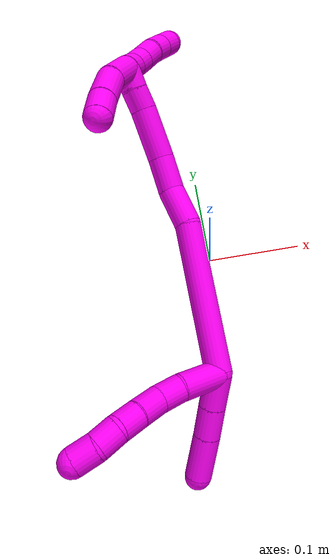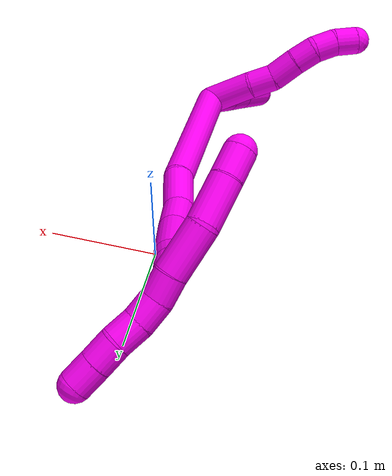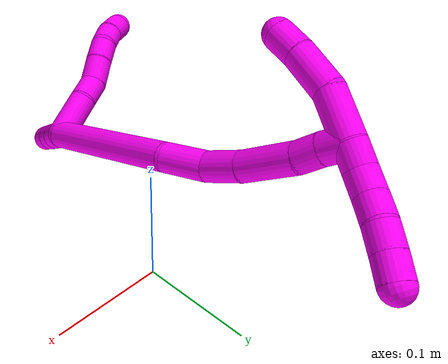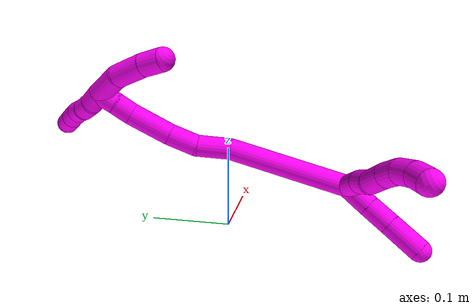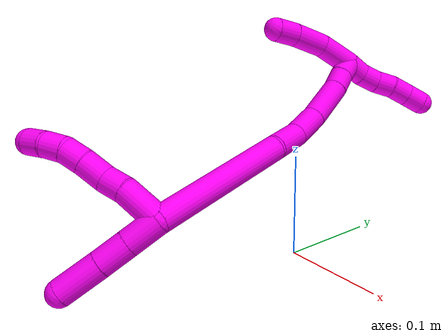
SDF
<sdf version="1.7">
 <world name="default">
  <model name="10">
   <static>0</static>
   <link name="10">
    <collision name="collision-cylinder-e_1_2_8">
     <pose>-0.011674 0.00832 0.015096 -0.503718 -0.595303 0.157549</pose>
     <geometry><cylinder><radius>0.0125</radius><length>0.041635</length></cylinder></geometry>
     <surface>
      <friction><ode><mu>1.16</mu><mu2>1.16</mu2><slip1>0</slip1><slip2>0</slip2></ode></friction>
      <contact><ode><kp>1e+06</kp><kd>1</kd><max_vel>0</max_vel><min_depth>0.001</min_depth></ode></contact>
     </surface>
    </collision>
    <visual name="visual-cylinder-e_1_2_8">
     <pose>-0.011674 0.00832 0.015096 -0.503718 -0.595303 0.157549</pose>
     <geometry><cylinder><radius>0.0125</radius><length>0.041635</length></cylinder></geometry>
     <material><ambient>1 0 0.964706 1</ambient></material>
    </visual>
    <collision name="collision-cylinder-e_2_8_9">
     <pose>-0.030625 0.019375 0.038317 -0.324729 -0.703836 0.120156</pose>
     <geometry><cylinder><radius>0.0125</radius><length>0.022492</length></cylinder></geometry>
     <surface>
      <friction><ode><mu>1.16</mu><mu2>1.16</mu2><slip1>0</slip1><slip2>0</slip2></ode></friction>
      <contact><ode><kp>1e+06</kp><kd>1</kd><max_vel>0</max_vel><min_depth>0.001</min_depth></ode></contact>
     </surface>
    </collision>
    <visual name="visual-cylinder-e_2_8_9">
     <pose>-0.030625 0.019375 0.038317 -0.324729 -0.703836 0.120156</pose>
     <geometry><cylinder><radius>0.0125</radius><length>0.022492</length></cylinder></geometry>
     <material><ambient>1 0 0.964706 1</ambient></material>
    </visual>
    <collision name="collision-cylinder-e_3_9_10">
     <pose>-0.04255 0.025671 0.057563 -0.309844 -0.378736 0.059848</pose>
     <geometry><cylinder><radius>0.0125</radius><length>0.025136</length></cylinder></geometry>
     <surface>
      <friction><ode><mu>1.16</mu><mu2>1.16</mu2><slip1>0</slip1><slip2>0</slip2></ode></friction>
      <contact><ode><kp>1e+06</kp><kd>1</kd><max_vel>0</max_vel><min_depth>0.001</min_depth></ode></contact>
     </surface>
    </collision>
    <visual name="visual-cylinder-e_3_9_10">
     <pose>-0.04255 0.025671 0.057563 -0.309844 -0.378736 0.059848</pose>
     <geometry><cylinder><radius>0.0125</radius><length>0.025136</length></cylinder></geometry>
     <material><ambient>1 0 0.964706 1</ambient></material>
    </visual>
    <collision name="collision-cylinder-e_4_10_11">
     <pose>-0.051834 0.031534 0.07757 -0.253597 -0.467847 0.060736</pose>
     <geometry><cylinder><radius>0.0125</radius><length>0.020567</length></cylinder></geometry>
     <surface>
      <friction><ode><mu>1.16</mu><mu2>1.16</mu2><slip1>0</slip1><slip2>0</slip2></ode></friction>
      <contact><ode><kp>1e+06</kp><kd>1</kd><max_vel>0</max_vel><min_depth>0.001</min_depth></ode></contact>
     </surface>
    </collision>
    <visual name="visual-cylinder-e_4_10_11">
     <pose>-0.051834 0.031534 0.07757 -0.253597 -0.467847 0.060736</pose>
     <geometry><cylinder><radius>0.0125</radius><length>0.020567</length></cylinder></geometry>
     <material><ambient>1 0 0.964706 1</ambient></material>
    </visual>
    <collision name="collision-cylinder-e_5_11_12">
     <pose>-0.063077 0.033957 0.093993 -0.015905 -0.719395 0.005981</pose>
     <geometry><cylinder><radius>0.0125</radius><length>0.020046</length></cylinder></geometry>
     <surface>
      <friction><ode><mu>1.16</mu><mu2>1.16</mu2><slip1>0</slip1><slip2>0</slip2></ode></friction>
      <contact><ode><kp>1e+06</kp><kd>1</kd><max_vel>0</max_vel><min_depth>0.001</min_depth></ode></contact>
     </surface>
    </collision>
    <visual name="visual-cylinder-e_5_11_12">
     <pose>-0.063077 0.033957 0.093993 -0.015905 -0.719395 0.005981</pose>
     <geometry><cylinder><radius>0.0125</radius><length>0.020046</length></cylinder></geometry>
     <material><ambient>1 0 0.964706 1</ambient></material>
    </visual>
    <collision name="collision-cylinder-e_6_12_6">
     <pose>-0.077943 0.034379 0.107266 -0.052614 -0.963405 0.02751</pose>
     <geometry><cylinder><radius>0.0125</radius><length>0.020123</length></cylinder></geometry>
     <surface>
      <friction><ode><mu>1.16</mu><mu2>1.16</mu2><slip1>0</slip1><slip2>0</slip2></ode></friction>
      <contact><ode><kp>1e+06</kp><kd>1</kd><max_vel>0</max_vel><min_depth>0.001</min_depth></ode></contact>
     </surface>
    </collision>
    <visual name="visual-cylinder-e_6_12_6">
     <pose>-0.077943 0.034379 0.107266 -0.052614 -0.963405 0.02751</pose>
     <geometry><cylinder><radius>0.0125</radius><length>0.020123</length></cylinder></geometry>
     <material><ambient>1 0 0.964706 1</ambient></material>
    </visual>
    <collision name="collision-cylinder-e_1_2_13">
     <pose>-0.008409 -0.012279 0.005306 1.16292 -0.561213 -0.37442</pose>
     <geometry><cylinder><radius>0.0125</radius><length>0.031599</length></cylinder></geometry>
     <surface>
      <friction><ode><mu>1.16</mu><mu2>1.16</mu2><slip1>0</slip1><slip2>0</slip2></ode></friction>
      <contact><ode><kp>1e+06</kp><kd>1</kd><max_vel>0</max_vel><min_depth>0.001</min_depth></ode></contact>
     </surface>
    </collision>
    <visual name="visual-cylinder-e_1_2_13">
     <pose>-0.008409 -0.012279 0.005306 1.16292 -0.561213 -0.37442</pose>
     <geometry><cylinder><radius>0.0125</radius><length>0.031599</length></cylinder></geometry>
     <material><ambient>1 0 0.964706 1</ambient></material>
    </visual>
    <collision name="collision-cylinder-e_2_13_14">
     <pose>-0.024109 -0.03566 0.015458 1.15924 -0.541807 -0.359692</pose>
     <geometry><cylinder><radius>0.0125</radius><length>0.028278</length></cylinder></geometry>
     <surface>
      <friction><ode><mu>1.16</mu><mu2>1.16</mu2><slip1>0</slip1><slip2>0</slip2></ode></friction>
      <contact><ode><kp>1e+06</kp><kd>1</kd><max_vel>0</max_vel><min_depth>0.001</min_depth></ode></contact>
     </surface>
    </collision>
    <visual name="visual-cylinder-e_2_13_14">
     <pose>-0.024109 -0.03566 0.015458 1.15924 -0.541807 -0.359692</pose>
     <geometry><cylinder><radius>0.0125</radius><length>0.028278</length></cylinder></geometry>
     <material><ambient>1 0 0.964706 1</ambient></material>
    </visual>
    <collision name="collision-cylinder-e_3_14_5">
     <pose>-0.0422 -0.062142 0.027325 1.14252 -0.568471 -0.371229</pose>
     <geometry><cylinder><radius>0.0125</radius><length>0.040123</length></cylinder></geometry>
     <surface>
      <friction><ode><mu>1.16</mu><mu2>1.16</mu2><slip1>0</slip1><slip2>0</slip2></ode></friction>
      <contact><ode><kp>1e+06</kp><kd>1</kd><max_vel>0</max_vel><min_depth>0.001</min_depth></ode></contact>
     </surface>
    </collision>
    <visual name="visual-cylinder-e_3_14_5">
     <pose>-0.0422 -0.062142 0.027325 1.14252 -0.568471 -0.371229</pose>
     <geometry><cylinder><radius>0.0125</radius><length>0.040123</length></cylinder></geometry>
     <material><ambient>1 0 0.964706 1</ambient></material>
    </visual>
    <collision name="collision-cylinder-e_1_2_15">
     <pose>0.00542 0.058479 -0.037365 -2.13936 0.077939 -0.142121</pose>
     <geometry><cylinder><radius>0.0125</radius><length>0.139216</length></cylinder></geometry>
     <surface>
      <friction><ode><mu>1.16</mu><mu2>1.16</mu2><slip1>0</slip1><slip2>0</slip2></ode></friction>
      <contact><ode><kp>1e+06</kp><kd>1</kd><max_vel>0</max_vel><min_depth>0.001</min_depth></ode></contact>
     </surface>
    </collision>
    <visual name="visual-cylinder-e_1_2_15">
     <pose>0.00542 0.058479 -0.037365 -2.13936 0.077939 -0.142121</pose>
     <geometry><cylinder><radius>0.0125</radius><length>0.139216</length></cylinder></geometry>
     <material><ambient>1 0 0.964706 1</ambient></material>
    </visual>
    <collision name="collision-cylinder-e_2_15_16">
     <pose>0.0071 0.132475 -0.085347 -2.17088 -0.196338 0.369196</pose>
     <geometry><cylinder><radius>0.0125</radius><length>0.03834</length></cylinder></geometry>
     <surface>
      <friction><ode><mu>1.16</mu><mu2>1.16</mu2><slip1>0</slip1><slip2>0</slip2></ode></friction>
      <contact><ode><kp>1e+06</kp><kd>1</kd><max_vel>0</max_vel><min_depth>0.001</min_depth></ode></contact>
     </surface>
    </collision>
    <visual name="visual-cylinder-e_2_15_16">
     <pose>0.0071 0.132475 -0.085347 -2.17088 -0.196338 0.369196</pose>
     <geometry><cylinder><radius>0.0125</radius><length>0.03834</length></cylinder></geometry>
     <material><ambient>1 0 0.964706 1</ambient></material>
    </visual>
    <collision name="collision-cylinder-e_3_16_17">
     <pose>0.003897 0.163256 -0.102456 -1.97287 0.032366 -0.048929</pose>
     <geometry><cylinder><radius>0.0125</radius><length>0.033192</length></cylinder></geometry>
     <surface>
      <friction><ode><mu>1.16</mu><mu2>1.16</mu2><slip1>0</slip1><slip2>0</slip2></ode></friction>
      <contact><ode><kp>1e+06</kp><kd>1</kd><max_vel>0</max_vel><min_depth>0.001</min_depth></ode></contact>
     </surface>
    </collision>
    <visual name="visual-cylinder-e_3_16_17">
     <pose>0.003897 0.163256 -0.102456 -1.97287 0.032366 -0.048929</pose>
     <geometry><cylinder><radius>0.0125</radius><length>0.033192</length></cylinder></geometry>
     <material><ambient>1 0 0.964706 1</ambient></material>
    </visual>
    <collision name="collision-cylinder-e_4_17_18">
     <pose>0.005446 0.201919 -0.115539 -1.8454 0.04158 -0.054907</pose>
     <geometry><cylinder><radius>0.0125</radius><length>0.048662</length></cylinder></geometry>
     <surface>
      <friction><ode><mu>1.16</mu><mu2>1.16</mu2><slip1>0</slip1><slip2>0</slip2></ode></friction>
      <contact><ode><kp>1e+06</kp><kd>1</kd><max_vel>0</max_vel><min_depth>0.001</min_depth></ode></contact>
     </surface>
    </collision>
    <visual name="visual-cylinder-e_4_17_18">
     <pose>0.005446 0.201919 -0.115539 -1.8454 0.04158 -0.054907</pose>
     <geometry><cylinder><radius>0.0125</radius><length>0.048662</length></cylinder></geometry>
     <material><ambient>1 0 0.964706 1</ambient></material>
    </visual>
    <collision name="collision-cylinder-e_5_18_19">
     <pose>0.00669 0.235512 -0.123318 -1.68681 0.0227 -0.025499</pose>
     <geometry><cylinder><radius>0.0125</radius><length>0.020531</length></cylinder></geometry>
     <surface>
      <friction><ode><mu>1.16</mu><mu2>1.16</mu2><slip1>0</slip1><slip2>0</slip2></ode></friction>
      <contact><ode><kp>1e+06</kp><kd>1</kd><max_vel>0</max_vel><min_depth>0.001</min_depth></ode></contact>
     </surface>
    </collision>
    <visual name="visual-cylinder-e_5_18_19">
     <pose>0.00669 0.235512 -0.123318 -1.68681 0.0227 -0.025499</pose>
     <geometry><cylinder><radius>0.0125</radius><length>0.020531</length></cylinder></geometry>
     <material><ambient>1 0 0.964706 1</ambient></material>
    </visual>
    <collision name="collision-cylinder-e_6_19_1">
     <pose>0.007462 0.255513 -0.12654 -1.77526 0.053718 -0.065992</pose>
     <geometry><cylinder><radius>0.0125</radius><length>0.020059</length></cylinder></geometry>
     <surface>
      <friction><ode><mu>1.16</mu><mu2>1.16</mu2><slip1>0</slip1><slip2>0</slip2></ode></friction>
      <contact><ode><kp>1e+06</kp><kd>1</kd><max_vel>0</max_vel><min_depth>0.001</min_depth></ode></contact>
     </surface>
    </collision>
    <visual name="visual-cylinder-e_6_19_1">
     <pose>0.007462 0.255513 -0.12654 -1.77526 0.053718 -0.065992</pose>
     <geometry><cylinder><radius>0.0125</radius><length>0.020059</length></cylinder></geometry>
     <material><ambient>1 0 0.964706 1</ambient></material>
    </visual>
    <collision name="collision-cylinder-e_1_1_20">
     <pose>0.007819 0.265038 -0.138568 3.1135 -0.018132 -1.14626</pose>
     <geometry><cylinder><radius>0.0125</radius><length>0.02</length></cylinder></geometry>
     <surface>
      <friction><ode><mu>1.16</mu><mu2>1.16</mu2><slip1>0</slip1><slip2>0</slip2></ode></friction>
      <contact><ode><kp>1e+06</kp><kd>1</kd><max_vel>0</max_vel><min_depth>0.001</min_depth></ode></contact>
     </surface>
    </collision>
    <visual name="visual-cylinder-e_1_1_20">
     <pose>0.007819 0.265038 -0.138568 3.1135 -0.018132 -1.14626</pose>
     <geometry><cylinder><radius>0.0125</radius><length>0.02</length></cylinder></geometry>
     <material><ambient>1 0 0.964706 1</ambient></material>
    </visual>
    <collision name="collision-cylinder-e_2_20_21">
     <pose>0.009592 0.26547 -0.158343 -3.06885 0.19675 -2.43515</pose>
     <geometry><cylinder><radius>0.0125</radius><length>0.02</length></cylinder></geometry>
     <surface>
      <friction><ode><mu>1.16</mu><mu2>1.16</mu2><slip1>0</slip1><slip2>0</slip2></ode></friction>
      <contact><ode><kp>1e+06</kp><kd>1</kd><max_vel>0</max_vel><min_depth>0.001</min_depth></ode></contact>
     </surface>
    </collision>
    <visual name="visual-cylinder-e_2_20_21">
     <pose>0.009592 0.26547 -0.158343 -3.06885 0.19675 -2.43515</pose>
     <geometry><cylinder><radius>0.0125</radius><length>0.02</length></cylinder></geometry>
     <material><ambient>1 0 0.964706 1</ambient></material>
    </visual>
    <collision name="collision-cylinder-e_3_21_22">
     <pose>0.015293 0.267478 -0.177305 -3.00143 0.384001 -2.44854</pose>
     <geometry><cylinder><radius>0.0125</radius><length>0.02</length></cylinder></geometry>
     <surface>
      <friction><ode><mu>1.16</mu><mu2>1.16</mu2><slip1>0</slip1><slip2>0</slip2></ode></friction>
      <contact><ode><kp>1e+06</kp><kd>1</kd><max_vel>0</max_vel><min_depth>0.001</min_depth></ode></contact>
     </surface>
    </collision>
    <visual name="visual-cylinder-e_3_21_22">
     <pose>0.015293 0.267478 -0.177305 -3.00143 0.384001 -2.44854</pose>
     <geometry><cylinder><radius>0.0125</radius><length>0.02</length></cylinder></geometry>
     <material><ambient>1 0 0.964706 1</ambient></material>
    </visual>
    <collision name="collision-cylinder-e_4_22_23">
     <pose>0.021421 0.268735 -0.196198 3.1376 0.240417 3.10857</pose>
     <geometry><cylinder><radius>0.0125</radius><length>0.02</length></cylinder></geometry>
     <surface>
      <friction><ode><mu>1.16</mu><mu2>1.16</mu2><slip1>0</slip1><slip2>0</slip2></ode></friction>
      <contact><ode><kp>1e+06</kp><kd>1</kd><max_vel>0</max_vel><min_depth>0.001</min_depth></ode></contact>
     </surface>
    </collision>
    <visual name="visual-cylinder-e_4_22_23">
     <pose>0.021421 0.268735 -0.196198 3.1376 0.240417 3.10857</pose>
     <geometry><cylinder><radius>0.0125</radius><length>0.02</length></cylinder></geometry>
     <material><ambient>1 0 0.964706 1</ambient></material>
    </visual>
    <collision name="collision-cylinder-e_5_23_4">
     <pose>0.026359 0.268421 -0.215574 3.11313 0.25863 2.92355</pose>
     <geometry><cylinder><radius>0.0125</radius><length>0.02</length></cylinder></geometry>
     <surface>
      <friction><ode><mu>1.16</mu><mu2>1.16</mu2><slip1>0</slip1><slip2>0</slip2></ode></friction>
      <contact><ode><kp>1e+06</kp><kd>1</kd><max_vel>0</max_vel><min_depth>0.001</min_depth></ode></contact>
     </surface>
    </collision>
    <visual name="visual-cylinder-e_5_23_4">
     <pose>0.026359 0.268421 -0.215574 3.11313 0.25863 2.92355</pose>
     <geometry><cylinder><radius>0.0125</radius><length>0.02</length></cylinder></geometry>
     <material><ambient>1 0 0.964706 1</ambient></material>
    </visual>
    <collision name="collision-cylinder-e_1_1_24">
     <pose>0.006404 0.264663 -0.108985 0.033476 -0.081278 -0.001361</pose>
     <geometry><cylinder><radius>0.0125</radius><length>0.039328</length></cylinder></geometry>
     <surface>
      <friction><ode><mu>1.16</mu><mu2>1.16</mu2><slip1>0</slip1><slip2>0</slip2></ode></friction>
      <contact><ode><kp>1e+06</kp><kd>1</kd><max_vel>0</max_vel><min_depth>0.001</min_depth></ode></contact>
     </surface>
    </collision>
    <visual name="visual-cylinder-e_1_1_24">
     <pose>0.006404 0.264663 -0.108985 0.033476 -0.081278 -0.001361</pose>
     <geometry><cylinder><radius>0.0125</radius><length>0.039328</length></cylinder></geometry>
     <material><ambient>1 0 0.964706 1</ambient></material>
    </visual>
    <collision name="collision-cylinder-e_2_24_25">
     <pose>0.004311 0.258413 -0.071868 0.308915 -0.026972 -0.0042</pose>
     <geometry><cylinder><radius>0.0125</radius><length>0.036815</length></cylinder></geometry>
     <surface>
      <friction><ode><mu>1.16</mu><mu2>1.16</mu2><slip1>0</slip1><slip2>0</slip2></ode></friction>
      <contact><ode><kp>1e+06</kp><kd>1</kd><max_vel>0</max_vel><min_depth>0.001</min_depth></ode></contact>
     </surface>
    </collision>
    <visual name="visual-cylinder-e_2_24_25">
     <pose>0.004311 0.258413 -0.071868 0.308915 -0.026972 -0.0042</pose>
     <geometry><cylinder><radius>0.0125</radius><length>0.036815</length></cylinder></geometry>
     <material><ambient>1 0 0.964706 1</ambient></material>
    </visual>
    <collision name="collision-cylinder-e_3_25_3">
     <pose>0.003338 0.248009 -0.043432 0.415353 -0.039957 -0.008421</pose>
     <geometry><cylinder><radius>0.0125</radius><length>0.023858</length></cylinder></geometry>
     <surface>
      <friction><ode><mu>1.16</mu><mu2>1.16</mu2><slip1>0</slip1><slip2>0</slip2></ode></friction>
      <contact><ode><kp>1e+06</kp><kd>1</kd><max_vel>0</max_vel><min_depth>0.001</min_depth></ode></contact>
     </surface>
    </collision>
    <visual name="visual-cylinder-e_3_25_3">
     <pose>0.003338 0.248009 -0.043432 0.415353 -0.039957 -0.008421</pose>
     <geometry><cylinder><radius>0.0125</radius><length>0.023858</length></cylinder></geometry>
     <material><ambient>1 0 0.964706 1</ambient></material>
    </visual>
    <collision name="collision-sphere-3">
     <pose>0.002861 0.2432 -0.032527 0 -0 0</pose>
     <geometry><sphere><radius>0.0125</radius></sphere></geometry>
     <surface>
      <friction><ode><mu>1.16</mu><mu2>1.16</mu2><slip1>0</slip1><slip2>0</slip2></ode></friction>
      <contact><ode><kp>1e+06</kp><kd>1</kd><max_vel>0</max_vel><min_depth>0.001</min_depth></ode></contact>
     </surface>
    </collision>
    <visual name="visual-sphere-3">
     <pose>0.002861 0.2432 -0.032527 0 -0 0</pose>
     <geometry><sphere><radius>0.0125</radius></sphere></geometry>
     <material><ambient>1 0 0.964706 1</ambient></material>
    </visual>
    <collision name="collision-sphere-25">
     <pose>0.003814 0.252819 -0.054338 0 -0 0</pose>
     <geometry><sphere><radius>0.0125</radius></sphere></geometry>
     <surface>
      <friction><ode><mu>1.16</mu><mu2>1.16</mu2><slip1>0</slip1><slip2>0</slip2></ode></friction>
      <contact><ode><kp>1e+06</kp><kd>1</kd><max_vel>0</max_vel><min_depth>0.001</min_depth></ode></contact>
     </surface>
    </collision>
    <visual name="visual-sphere-25">
     <pose>0.003814 0.252819 -0.054338 0 -0 0</pose>
     <geometry><sphere><radius>0.0125</radius></sphere></geometry>
     <material><ambient>1 0 0.964706 1</ambient></material>
    </visual>
    <collision name="collision-sphere-24">
     <pose>0.004807 0.264007 -0.089397 0 -0 0</pose>
     <geometry><sphere><radius>0.0125</radius></sphere></geometry>
     <surface>
      <friction><ode><mu>1.16</mu><mu2>1.16</mu2><slip1>0</slip1><slip2>0</slip2></ode></friction>
      <contact><ode><kp>1e+06</kp><kd>1</kd><max_vel>0</max_vel><min_depth>0.001</min_depth></ode></contact>
     </surface>
    </collision>
    <visual name="visual-sphere-24">
     <pose>0.004807 0.264007 -0.089397 0 -0 0</pose>
     <geometry><sphere><radius>0.0125</radius></sphere></geometry>
     <material><ambient>1 0 0.964706 1</ambient></material>
    </visual>
    <collision name="collision-sphere-4">
     <pose>0.028917 0.268146 -0.225238 0 -0 0</pose>
     <geometry><sphere><radius>0.0125</radius></sphere></geometry>
     <surface>
      <friction><ode><mu>1.16</mu><mu2>1.16</mu2><slip1>0</slip1><slip2>0</slip2></ode></friction>
      <contact><ode><kp>1e+06</kp><kd>1</kd><max_vel>0</max_vel><min_depth>0.001</min_depth></ode></contact>
     </surface>
    </collision>
    <visual name="visual-sphere-4">
     <pose>0.028917 0.268146 -0.225238 0 -0 0</pose>
     <geometry><sphere><radius>0.0125</radius></sphere></geometry>
     <material><ambient>1 0 0.964706 1</ambient></material>
    </visual>
    <collision name="collision-sphere-23">
     <pose>0.023802 0.268696 -0.205911 0 -0 0</pose>
     <geometry><sphere><radius>0.0125</radius></sphere></geometry>
     <surface>
      <friction><ode><mu>1.16</mu><mu2>1.16</mu2><slip1>0</slip1><slip2>0</slip2></ode></friction>
      <contact><ode><kp>1e+06</kp><kd>1</kd><max_vel>0</max_vel><min_depth>0.001</min_depth></ode></contact>
     </surface>
    </collision>
    <visual name="visual-sphere-23">
     <pose>0.023802 0.268696 -0.205911 0 -0 0</pose>
     <geometry><sphere><radius>0.0125</radius></sphere></geometry>
     <material><ambient>1 0 0.964706 1</ambient></material>
    </visual>
    <collision name="collision-sphere-22">
     <pose>0.01904 0.268774 -0.186486 0 -0 0</pose>
     <geometry><sphere><radius>0.0125</radius></sphere></geometry>
     <surface>
      <friction><ode><mu>1.16</mu><mu2>1.16</mu2><slip1>0</slip1><slip2>0</slip2></ode></friction>
      <contact><ode><kp>1e+06</kp><kd>1</kd><max_vel>0</max_vel><min_depth>0.001</min_depth></ode></contact>
     </surface>
    </collision>
    <visual name="visual-sphere-22">
     <pose>0.01904 0.268774 -0.186486 0 -0 0</pose>
     <geometry><sphere><radius>0.0125</radius></sphere></geometry>
     <material><ambient>1 0 0.964706 1</ambient></material>
    </visual>
    <collision name="collision-sphere-21">
     <pose>0.011547 0.266183 -0.168124 0 -0 0</pose>
     <geometry><sphere><radius>0.0125</radius></sphere></geometry>
     <surface>
      <friction><ode><mu>1.16</mu><mu2>1.16</mu2><slip1>0</slip1><slip2>0</slip2></ode></friction>
      <contact><ode><kp>1e+06</kp><kd>1</kd><max_vel>0</max_vel><min_depth>0.001</min_depth></ode></contact>
     </surface>
    </collision>
    <visual name="visual-sphere-21">
     <pose>0.011547 0.266183 -0.168124 0 -0 0</pose>
     <geometry><sphere><radius>0.0125</radius></sphere></geometry>
     <material><ambient>1 0 0.964706 1</ambient></material>
    </visual>
    <collision name="collision-sphere-20">
     <pose>0.007637 0.264758 -0.148562 0 -0 0</pose>
     <geometry><sphere><radius>0.0125</radius></sphere></geometry>
     <surface>
      <friction><ode><mu>1.16</mu><mu2>1.16</mu2><slip1>0</slip1><slip2>0</slip2></ode></friction>
      <contact><ode><kp>1e+06</kp><kd>1</kd><max_vel>0</max_vel><min_depth>0.001</min_depth></ode></contact>
     </surface>
    </collision>
    <visual name="visual-sphere-20">
     <pose>0.007637 0.264758 -0.148562 0 -0 0</pose>
     <geometry><sphere><radius>0.0125</radius></sphere></geometry>
     <material><ambient>1 0 0.964706 1</ambient></material>
    </visual>
    <collision name="collision-sphere-12">
     <pose>-0.069681 0.034077 0.101532 0 -0 0</pose>
     <geometry><sphere><radius>0.0125</radius></sphere></geometry>
     <surface>
      <friction><ode><mu>1.16</mu><mu2>1.16</mu2><slip1>0</slip1><slip2>0</slip2></ode></friction>
      <contact><ode><kp>1e+06</kp><kd>1</kd><max_vel>0</max_vel><min_depth>0.001</min_depth></ode></contact>
     </surface>
    </collision>
    <visual name="visual-sphere-12">
     <pose>-0.069681 0.034077 0.101532 0 -0 0</pose>
     <geometry><sphere><radius>0.0125</radius></sphere></geometry>
     <material><ambient>1 0 0.964706 1</ambient></material>
    </visual>
    <collision name="collision-sphere-11">
     <pose>-0.056472 0.033837 0.086455 0 -0 0</pose>
     <geometry><sphere><radius>0.0125</radius></sphere></geometry>
     <surface>
      <friction><ode><mu>1.16</mu><mu2>1.16</mu2><slip1>0</slip1><slip2>0</slip2></ode></friction>
      <contact><ode><kp>1e+06</kp><kd>1</kd><max_vel>0</max_vel><min_depth>0.001</min_depth></ode></contact>
     </surface>
    </collision>
    <visual name="visual-sphere-11">
     <pose>-0.056472 0.033837 0.086455 0 -0 0</pose>
     <geometry><sphere><radius>0.0125</radius></sphere></geometry>
     <material><ambient>1 0 0.964706 1</ambient></material>
    </visual>
    <collision name="collision-sphere-10">
     <pose>-0.047197 0.029231 0.068685 0 -0 0</pose>
     <geometry><sphere><radius>0.0125</radius></sphere></geometry>
     <surface>
      <friction><ode><mu>1.16</mu><mu2>1.16</mu2><slip1>0</slip1><slip2>0</slip2></ode></friction>
      <contact><ode><kp>1e+06</kp><kd>1</kd><max_vel>0</max_vel><min_depth>0.001</min_depth></ode></contact>
     </surface>
    </collision>
    <visual name="visual-sphere-10">
     <pose>-0.047197 0.029231 0.068685 0 -0 0</pose>
     <geometry><sphere><radius>0.0125</radius></sphere></geometry>
     <material><ambient>1 0 0.964706 1</ambient></material>
    </visual>
    <collision name="collision-sphere-9">
     <pose>-0.037903 0.02211 0.046442 0 -0 0</pose>
     <geometry><sphere><radius>0.0125</radius></sphere></geometry>
     <surface>
      <friction><ode><mu>1.16</mu><mu2>1.16</mu2><slip1>0</slip1><slip2>0</slip2></ode></friction>
      <contact><ode><kp>1e+06</kp><kd>1</kd><max_vel>0</max_vel><min_depth>0.001</min_depth></ode></contact>
     </surface>
    </collision>
    <visual name="visual-sphere-9">
     <pose>-0.037903 0.02211 0.046442 0 -0 0</pose>
     <geometry><sphere><radius>0.0125</radius></sphere></geometry>
     <material><ambient>1 0 0.964706 1</ambient></material>
    </visual>
    <collision name="collision-sphere-2">
     <geometry><sphere><radius>0.0125</radius></sphere></geometry>
     <surface>
      <friction><ode><mu>1.16</mu><mu2>1.16</mu2><slip1>0</slip1><slip2>0</slip2></ode></friction>
      <contact><ode><kp>1e+06</kp><kd>1</kd><max_vel>0</max_vel><min_depth>0.001</min_depth></ode></contact>
     </surface>
    </collision>
    <visual name="visual-sphere-2">
     <geometry><sphere><radius>0.0125</radius></sphere></geometry>
     <material><ambient>1 0 0.964706 1</ambient></material>
    </visual>
    <collision name="collision-sphere-19">
     <pose>0.006923 0.245706 -0.124506 0 -0 0</pose>
     <geometry><sphere><radius>0.0125</radius></sphere></geometry>
     <surface>
      <friction><ode><mu>1.16</mu><mu2>1.16</mu2><slip1>0</slip1><slip2>0</slip2></ode></friction>
      <contact><ode><kp>1e+06</kp><kd>1</kd><max_vel>0</max_vel><min_depth>0.001</min_depth></ode></contact>
     </surface>
    </collision>
    <visual name="visual-sphere-19">
     <pose>0.006923 0.245706 -0.124506 0 -0 0</pose>
     <geometry><sphere><radius>0.0125</radius></sphere></geometry>
     <material><ambient>1 0 0.964706 1</ambient></material>
    </visual>
    <collision name="collision-sphere-8">
     <pose>-0.023347 0.01664 0.030191 0 -0 0</pose>
     <geometry><sphere><radius>0.0125</radius></sphere></geometry>
     <surface>
      <friction><ode><mu>1.16</mu><mu2>1.16</mu2><slip1>0</slip1><slip2>0</slip2></ode></friction>
      <contact><ode><kp>1e+06</kp><kd>1</kd><max_vel>0</max_vel><min_depth>0.001</min_depth></ode></contact>
     </surface>
    </collision>
    <visual name="visual-sphere-8">
     <pose>-0.023347 0.01664 0.030191 0 -0 0</pose>
     <geometry><sphere><radius>0.0125</radius></sphere></geometry>
     <material><ambient>1 0 0.964706 1</ambient></material>
    </visual>
    <collision name="collision-sphere-6">
     <pose>-0.086205 0.034681 0.113001 0 -0 0</pose>
     <geometry><sphere><radius>0.0125</radius></sphere></geometry>
     <surface>
      <friction><ode><mu>1.16</mu><mu2>1.16</mu2><slip1>0</slip1><slip2>0</slip2></ode></friction>
      <contact><ode><kp>1e+06</kp><kd>1</kd><max_vel>0</max_vel><min_depth>0.001</min_depth></ode></contact>
     </surface>
    </collision>
    <visual name="visual-sphere-6">
     <pose>-0.086205 0.034681 0.113001 0 -0 0</pose>
     <geometry><sphere><radius>0.0125</radius></sphere></geometry>
     <material><ambient>1 0 0.964706 1</ambient></material>
    </visual>
    <collision name="collision-sphere-13">
     <pose>-0.016818 -0.024558 0.010612 0 -0 0</pose>
     <geometry><sphere><radius>0.0125</radius></sphere></geometry>
     <surface>
      <friction><ode><mu>1.16</mu><mu2>1.16</mu2><slip1>0</slip1><slip2>0</slip2></ode></friction>
      <contact><ode><kp>1e+06</kp><kd>1</kd><max_vel>0</max_vel><min_depth>0.001</min_depth></ode></contact>
     </surface>
    </collision>
    <visual name="visual-sphere-13">
     <pose>-0.016818 -0.024558 0.010612 0 -0 0</pose>
     <geometry><sphere><radius>0.0125</radius></sphere></geometry>
     <material><ambient>1 0 0.964706 1</ambient></material>
    </visual>
    <collision name="collision-sphere-14">
     <pose>-0.0314 -0.046763 0.020304 0 -0 0</pose>
     <geometry><sphere><radius>0.0125</radius></sphere></geometry>
     <surface>
      <friction><ode><mu>1.16</mu><mu2>1.16</mu2><slip1>0</slip1><slip2>0</slip2></ode></friction>
      <contact><ode><kp>1e+06</kp><kd>1</kd><max_vel>0</max_vel><min_depth>0.001</min_depth></ode></contact>
     </surface>
    </collision>
    <visual name="visual-sphere-14">
     <pose>-0.0314 -0.046763 0.020304 0 -0 0</pose>
     <geometry><sphere><radius>0.0125</radius></sphere></geometry>
     <material><ambient>1 0 0.964706 1</ambient></material>
    </visual>
    <collision name="collision-sphere-5">
     <pose>-0.053 -0.077521 0.034346 0 -0 0</pose>
     <geometry><sphere><radius>0.0125</radius></sphere></geometry>
     <surface>
      <friction><ode><mu>1.16</mu><mu2>1.16</mu2><slip1>0</slip1><slip2>0</slip2></ode></friction>
      <contact><ode><kp>1e+06</kp><kd>1</kd><max_vel>0</max_vel><min_depth>0.001</min_depth></ode></contact>
     </surface>
    </collision>
    <visual name="visual-sphere-5">
     <pose>-0.053 -0.077521 0.034346 0 -0 0</pose>
     <geometry><sphere><radius>0.0125</radius></sphere></geometry>
     <material><ambient>1 0 0.964706 1</ambient></material>
    </visual>
    <collision name="collision-sphere-15">
     <pose>0.010839 0.116958 -0.07473 0 -0 0</pose>
     <geometry><sphere><radius>0.0125</radius></sphere></geometry>
     <surface>
      <friction><ode><mu>1.16</mu><mu2>1.16</mu2><slip1>0</slip1><slip2>0</slip2></ode></friction>
      <contact><ode><kp>1e+06</kp><kd>1</kd><max_vel>0</max_vel><min_depth>0.001</min_depth></ode></contact>
     </surface>
    </collision>
    <visual name="visual-sphere-15">
     <pose>0.010839 0.116958 -0.07473 0 -0 0</pose>
     <geometry><sphere><radius>0.0125</radius></sphere></geometry>
     <material><ambient>1 0 0.964706 1</ambient></material>
    </visual>
    <collision name="collision-sphere-16">
     <pose>0.00336 0.147991 -0.095965 0 -0 0</pose>
     <geometry><sphere><radius>0.0125</radius></sphere></geometry>
     <surface>
      <friction><ode><mu>1.16</mu><mu2>1.16</mu2><slip1>0</slip1><slip2>0</slip2></ode></friction>
      <contact><ode><kp>1e+06</kp><kd>1</kd><max_vel>0</max_vel><min_depth>0.001</min_depth></ode></contact>
     </surface>
    </collision>
    <visual name="visual-sphere-16">
     <pose>0.00336 0.147991 -0.095965 0 -0 0</pose>
     <geometry><sphere><radius>0.0125</radius></sphere></geometry>
     <material><ambient>1 0 0.964706 1</ambient></material>
    </visual>
    <collision name="collision-sphere-17">
     <pose>0.004434 0.178521 -0.108947 0 -0 0</pose>
     <geometry><sphere><radius>0.0125</radius></sphere></geometry>
     <surface>
      <friction><ode><mu>1.16</mu><mu2>1.16</mu2><slip1>0</slip1><slip2>0</slip2></ode></friction>
      <contact><ode><kp>1e+06</kp><kd>1</kd><max_vel>0</max_vel><min_depth>0.001</min_depth></ode></contact>
     </surface>
    </collision>
    <visual name="visual-sphere-17">
     <pose>0.004434 0.178521 -0.108947 0 -0 0</pose>
     <geometry><sphere><radius>0.0125</radius></sphere></geometry>
     <material><ambient>1 0 0.964706 1</ambient></material>
    </visual>
    <collision name="collision-sphere-18">
     <pose>0.006457 0.225318 -0.122131 0 -0 0</pose>
     <geometry><sphere><radius>0.0125</radius></sphere></geometry>
     <surface>
      <friction><ode><mu>1.16</mu><mu2>1.16</mu2><slip1>0</slip1><slip2>0</slip2></ode></friction>
      <contact><ode><kp>1e+06</kp><kd>1</kd><max_vel>0</max_vel><min_depth>0.001</min_depth></ode></contact>
     </surface>
    </collision>
    <visual name="visual-sphere-18">
     <pose>0.006457 0.225318 -0.122131 0 -0 0</pose>
     <geometry><sphere><radius>0.0125</radius></sphere></geometry>
     <material><ambient>1 0 0.964706 1</ambient></material>
    </visual>
    <collision name="collision-sphere-1">
     <pose>0.008 0.265319 -0.128573 0 -0 0</pose>
     <geometry><sphere><radius>0.0125</radius></sphere></geometry>
     <surface>
      <friction><ode><mu>1.16</mu><mu2>1.16</mu2><slip1>0</slip1><slip2>0</slip2></ode></friction>
      <contact><ode><kp>1e+06</kp><kd>1</kd><max_vel>0</max_vel><min_depth>0.001</min_depth></ode></contact>
     </surface>
    </collision>
    <visual name="visual-sphere-1">
     <pose>0.008 0.265319 -0.128573 0 -0 0</pose>
     <geometry><sphere><radius>0.0125</radius></sphere></geometry>
     <material><ambient>1 0 0.964706 1</ambient></material>
    </visual>
    <inertial>
     <pose>-0.006635 0.120701 -0.050638 0 -0 0</pose>
     <mass>0.75</mass>
     <inertia>
      <ixx>0.00024</ixx>
      <ixy>0</ixy>
      <ixz>0</ixz>
      <iyy>-0.000108</iyy>
      <iyz>0</iyz>
      <izz>-0.000208</izz>
     </inertia>
    </inertial>
   </link>
   <pose>-0.017215 -0.14078 0.068333 0.831951 -0.470269 -0.014073</pose>
  </model>
 </world>
</sdf>
